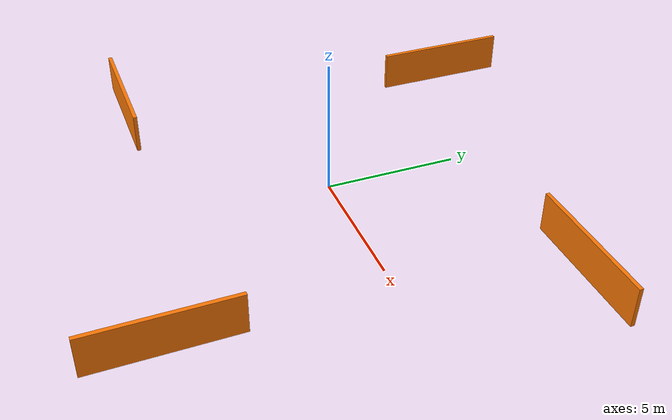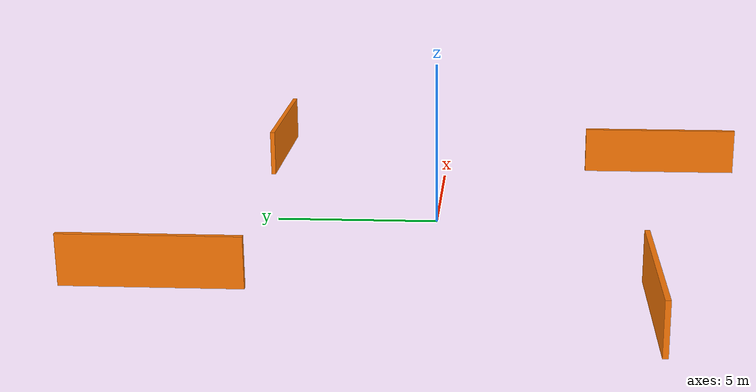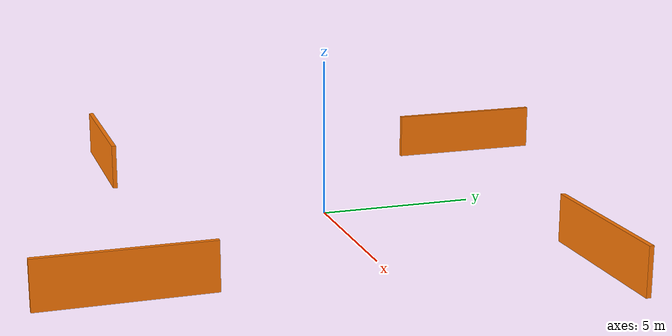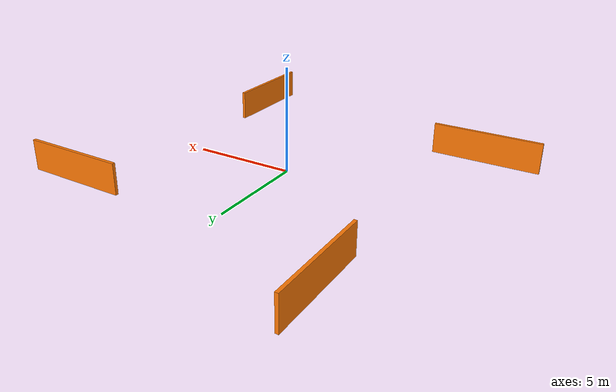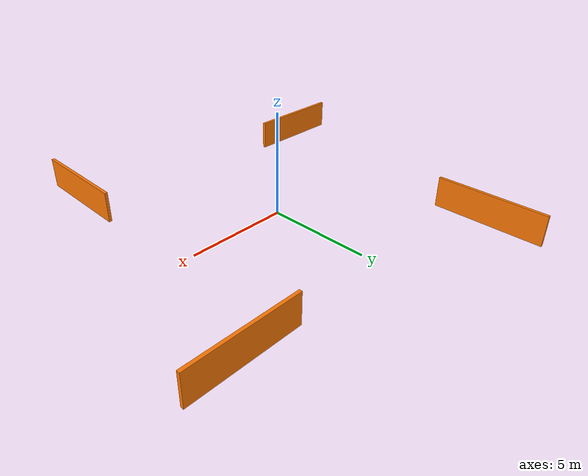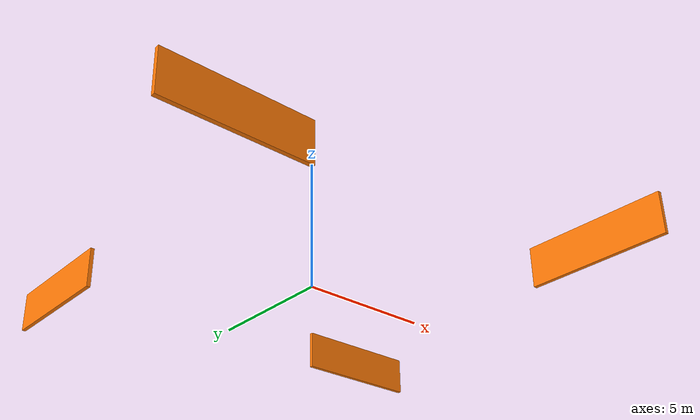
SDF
<?xml version='1.0'?>
<sdf version='1.6'>
  <model name='test_map_inside_wall'>
    <pose frame=''>0 0 0 0 -0 0</pose>
    <link name='Wall_0'>
      <collision name='Wall_0_Collision'>
        <geometry>
          <box>
            <size>5.15 0.15 1.5</size>
          </box>
        </geometry>
        <pose frame=''>0 0 0.75 0 -0 0</pose>
      </collision>
      <visual name='Wall_0_Visual'>
        <pose frame=''>0 0 0.75 0 -0 0</pose>
        <geometry>
          <box>
            <size>5.15 0.15 1.5</size>
          </box>
        </geometry>
        <material>
          <script>
            <uri>file://media/materials/scripts/gazebo.material</uri>
            <name>Gazebo/Grey</name>
          </script>
          <ambient>0.996078 0.47451 0.0196078 1</ambient>
        </material>
        <meta>
          <layer>0</layer>
        </meta>
      </visual>
      <pose frame=''>-6 7.5 0 0 -0 1.5708</pose>
    </link>
    <link name='Wall_3'>
      <collision name='Wall_3_Collision'>
        <geometry>
          <box>
            <size>5.15 0.15 1.5</size>
          </box>
        </geometry>
        <pose frame=''>0 0 0.75 0 -0 0</pose>
      </collision>
      <visual name='Wall_3_Visual'>
        <pose frame=''>0 0 0.75 0 -0 0</pose>
        <geometry>
          <box>
            <size>5.15 0.15 1.5</size>
          </box>
        </geometry>
        <material>
          <script>
            <uri>file://media/materials/scripts/gazebo.material</uri>
            <name>Gazebo/Grey</name>
          </script>
          <ambient>0.996078 0.47451 0.0196078 1</ambient>
        </material>
        <meta>
          <layer>0</layer>
        </meta>
      </visual>
      <pose frame=''>7.5 6 0 0 -0 0</pose>
    </link>
    <link name='Wall_5'>
      <collision name='Wall_5_Collision'>
        <geometry>
          <box>
            <size>5.15 0.15 1.5</size>
          </box>
        </geometry>
        <pose frame=''>0 0 0.75 0 -0 0</pose>
      </collision>
      <visual name='Wall_5_Visual'>
        <pose frame=''>0 0 0.75 0 -0 0</pose>
        <geometry>
          <box>
            <size>5.15 0.15 1.5</size>
          </box>
        </geometry>
        <material>
          <script>
            <uri>file://media/materials/scripts/gazebo.material</uri>
            <name>Gazebo/Grey</name>
          </script>
          <ambient>0.996078 0.47451 0.0196078 1</ambient>
        </material>
        <meta>
          <layer>0</layer>
        </meta>
      </visual>
      <pose frame=''>6 -7.5 0 0 -0 -1.5708</pose>
    </link>
    <link name='Wall_7'>
      <collision name='Wall_7_Collision'>
        <geometry>
          <box>
            <size>5.15 0.15 1.5</size>
          </box>
        </geometry>
        <pose frame=''>0 0 0.75 0 -0 0</pose>
      </collision>
      <visual name='Wall_7_Visual'>
        <pose frame=''>0 0 0.75 0 -0 0</pose>
        <geometry>
          <box>
            <size>5.15 0.15 1.5</size>
          </box>
        </geometry>
        <material>
          <script>
            <uri>file://media/materials/scripts/gazebo.material</uri>
            <name>Gazebo/Grey</name>
          </script>
          <ambient>0.996078 0.47451 0.0196078 1</ambient>
        </material>
        <meta>
          <layer>0</layer>
        </meta>
      </visual>
      <pose frame=''>-7.5 -6 0 0 -0 3.14159</pose>
    </link>
    <static>1</static>
  </model>
</sdf>
